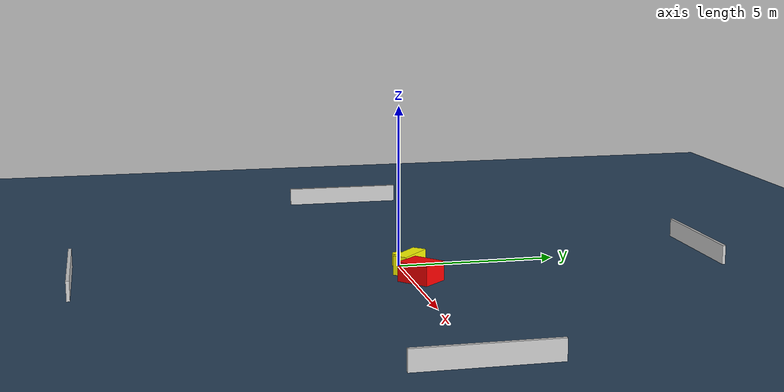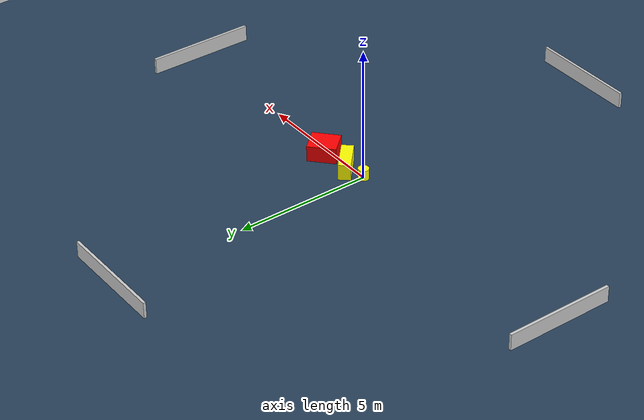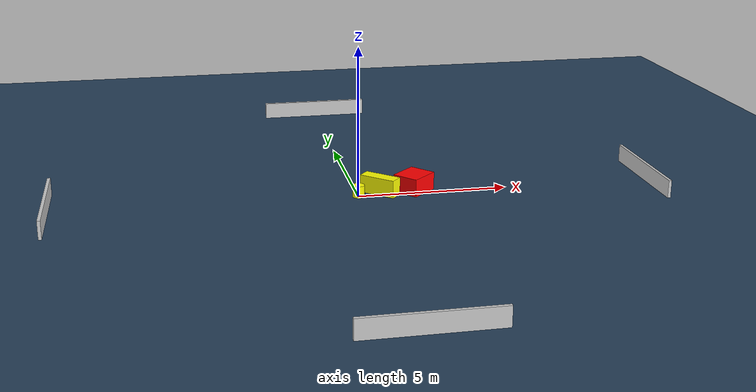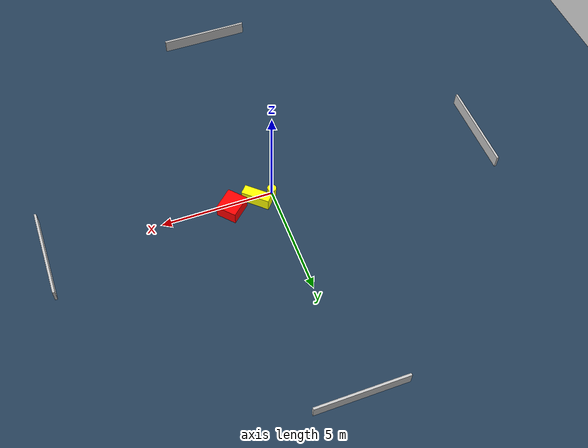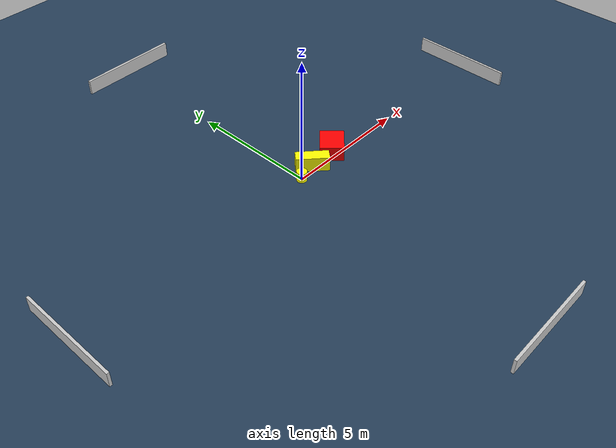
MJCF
<?xml version="1.0" ?>
<mujoco model="generated_environment">
  <option timestep="0.01" integrator="RK4" cone="elliptic"/>
  <default>
    <geom density="1"/>
  </default>
  <asset>
    <texture builtin="gradient" height="3072" name="skybox" rgb1="0.3 0.5 0.7" rgb2="0 0 0" type="skybox" width="512"/>
    <texture builtin="checker" height="300" name="groundplane" rgb1="0.2 0.3 0.4" rgb2="0.1 0.2 0.3" type="2d" width="300"/>
    <material name="groundplane" reflectance="0.2" texrepeat="5 5" texture="groundplane"/>
  </asset>
  <worldbody>
    <light dir="0 0 -1" directional="true" pos="0 0 1.5"/>
    <geom condim="3" friction="0.5 0.005 0.001" material="groundplane" name="floor" pos="0 0 0" size="0 0 0.05" type="plane"/>
    <body name="walls">
      <geom name="wall_1" condim="4" pos="-10.0 0.0 0.3" rgba="0.800000011920929 0.800000011920929 0.800000011920929 1.0" size="0.05 2.0 0.3" type="box"/>
      <geom name="wall_2" condim="4" pos="10.0 0.0 0.3" rgba="0.800000011920929 0.800000011920929 0.800000011920929 1.0" size="0.05 2.0 0.3" type="box"/>
      <geom name="wall_3" condim="4" pos="0.0 -10.0 0.3" rgba="0.800000011920929 0.800000011920929 0.800000011920929 1.0" size="2.0 0.05 0.3" type="box"/>
      <geom name="wall_4" condim="4" pos="0.0 10.0 0.3" rgba="0.800000011920929 0.800000011920929 0.800000011920929 1.0" size="2.0 0.05 0.3" type="box"/>
    </body>
    <body name="robot">
      <joint name="joint_x" type="slide" pos="0 0 0" axis="1 0 0"/>
      <joint name="joint_y" type="slide" pos="0 0 0" axis="0 1 0"/>
      <geom name="robot" type="cylinder" pos="0.0 0.0 0.2" size="0.2 0.2 0.0" mass="5.0" friction="1.0 0.005 0.0001" condim="4" rgba="1.0 1.0 0.0 1.0"/>
    </body>
    <body name="obstacle_1_movable">
      <geom name="obstacle_1_movable" condim="4" pos="0.7565888558908191 0.17840966688911367 0.3" euler="0 0 48.06547383733203" friction="0.0 0.005 0.001" rgba="1.0 1.0 0.0 1.0" size="0.2225607776499279 0.6299427052266715 0.3" type="box" mass="0.1"/>
      <joint type="free"/>
    </body>
    <body name="obstacle_2_static">
      <geom name="obstacle_2_static" condim="4" pos="1.9223946758332333 0.25589704676229535 0.3" euler="0 0 42.06262782612606" friction="0.0 0.005 0.001" rgba="1.0 0.0 0.0 1.0" size="0.5223972873103095 0.45693375023543287 0.3" type="box"/>
    </body>
  </worldbody>
  <actuator>
    <motor name="actuator_x" joint="joint_x" gear="1" ctrlrange="-1 1"/>
    <motor name="actuator_y" joint="joint_y" gear="1" ctrlrange="-1 1"/>
  </actuator>
</mujoco>
